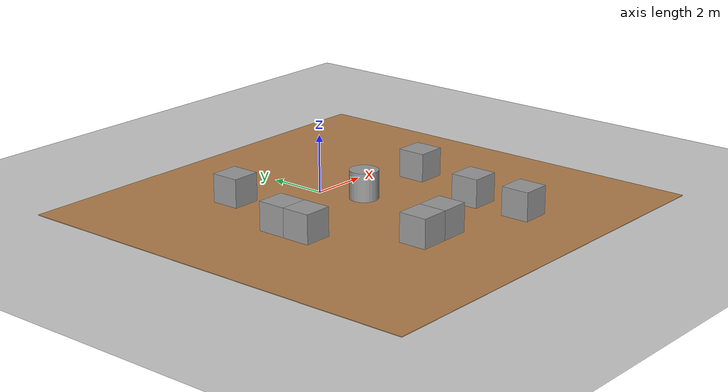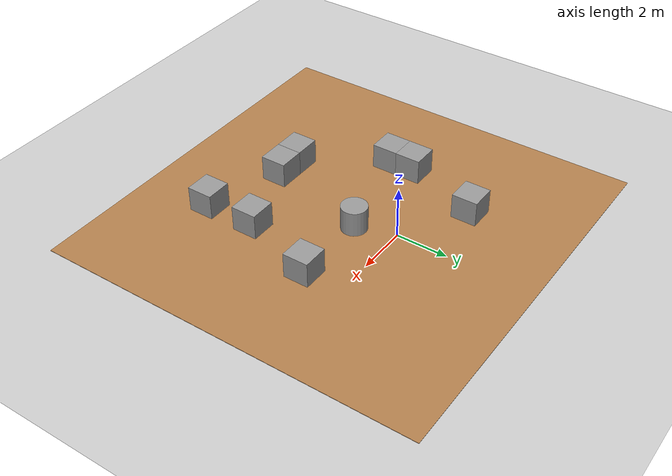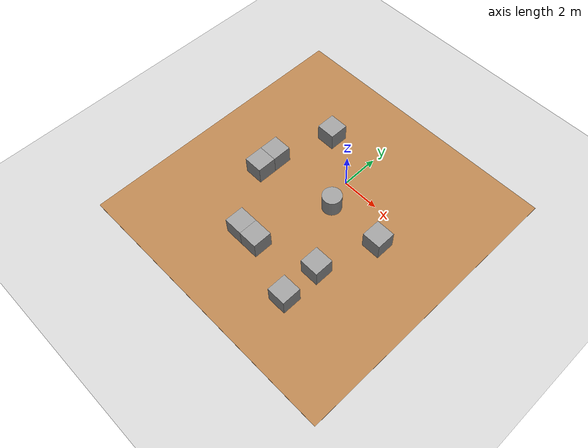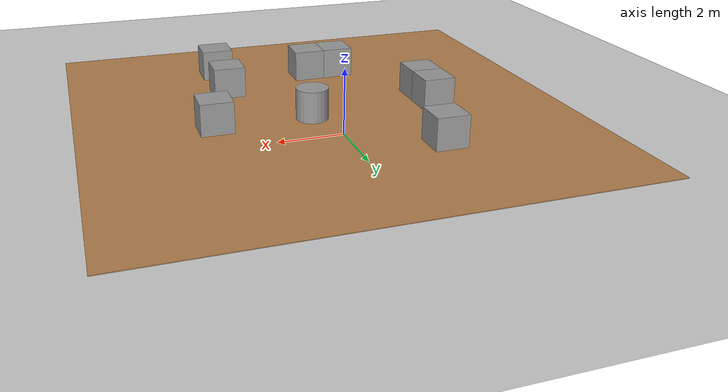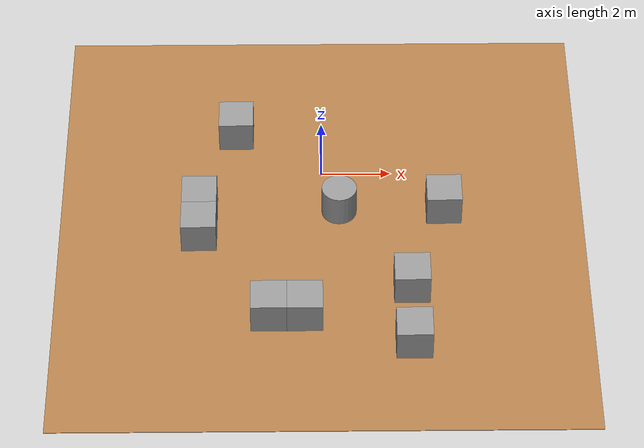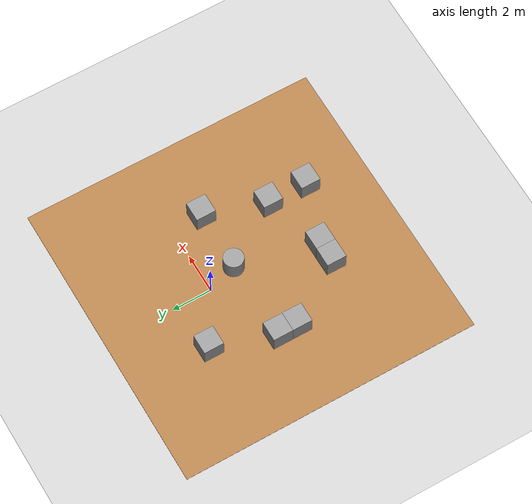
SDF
<sdf version="1.6">
 <world name="default">
  <model name="ground_plane">
   <static>1</static>
   <link name="link">
    <collision name="collision">
     <laser_retro>255</laser_retro>
     <geometry><plane><normal>0 0 1</normal><size>100 100</size></plane></geometry>
     <surface><friction><ode><mu>100</mu><mu2>50</mu2></ode></friction></surface>
    </collision>
    <visual name="visual">
     <cast_shadows>0</cast_shadows>
     <geometry><plane><normal>0 0 1</normal><size>100 100</size></plane></geometry>
     <material>
      <script><uri>file://media/materials/scripts/gazebo.material</uri><name>Gazebo/Grey</name></script>
     </material>
    </visual>
    <velocity_decay><linear>0</linear><angular>0</angular></velocity_decay>
   </link>
  </model>
  <physics name="default_physics" default="0" type="ode">
   <max_step_size>0.001</max_step_size>
   <real_time_factor>1</real_time_factor>
   <real_time_update_rate>1000</real_time_update_rate>
  </physics>
  <scene><ambient>0.4 0.4 0.4 1</ambient><background>0.7 0.7 0.7 1</background><shadows>1</shadows></scene>
  <gravity>0 0 -9.8</gravity>
  <magnetic_field>6e-06 2.3e-05 -4.2e-05</magnetic_field>
  <atmosphere type="adiabatic"/>
  <audio><device>default</device></audio>
  <spherical_coordinates>
   <surface_model>EARTH_WGS84</surface_model>
   <latitude_deg>0</latitude_deg>
   <longitude_deg>0</longitude_deg>
   <elevation>0</elevation>
   <heading_deg>0</heading_deg>
  </spherical_coordinates>
  <model name="unit_cylinder">
   <pose>0.499996 -1.5 0.499993 -4e-06 -3e-06 -0</pose>
   <link name="link">
    <inertial>
     <mass>1</mass>
     <inertia><ixx>0.145833</ixx><ixy>0</ixy><ixz>0</ixz><iyy>0.145833</iyy><iyz>0</iyz><izz>0.125</izz></inertia>
    </inertial>
    <collision name="collision">
     <geometry><cylinder><radius>0.5</radius><length>1</length></cylinder></geometry>
    </collision>
    <visual name="visual">
     <geometry><cylinder><radius>0.5</radius><length>1</length></cylinder></geometry>
     <material>
      <script><name>Gazebo/Grey</name><uri>file://media/materials/scripts/gazebo.material</uri></script>
     </material>
    </visual>
   </link>
  </model>
  <model name="unit_box">
   <pose>-0.500001 -5.5 0.5 0 -0 0</pose>
   <link name="link">
    <inertial>
     <mass>1</mass>
     <inertia>
      <ixx>0.166667</ixx>
      <ixy>0</ixy>
      <ixz>0</ixz>
      <iyy>0.166667</iyy>
      <iyz>0</iyz>
      <izz>0.166667</izz>
     </inertia>
    </inertial>
    <collision name="collision"><geometry><box><size>1 1 1</size></box></geometry></collision>
    <visual name="visual">
     <geometry><box><size>1 1 1</size></box></geometry>
     <material>
      <script><name>Gazebo/Grey</name><uri>file://media/materials/scripts/gazebo.material</uri></script>
     </material>
    </visual>
   </link>
  </model>
  <model name="unit_box_clone">
   <pose>-1.5 -5.5 0.5 0 -0 1e-06</pose>
   <link name="link">
    <inertial>
     <mass>1</mass>
     <inertia>
      <ixx>0.166667</ixx>
      <ixy>0</ixy>
      <ixz>0</ixz>
      <iyy>0.166667</iyy>
      <iyz>0</iyz>
      <izz>0.166667</izz>
     </inertia>
    </inertial>
    <collision name="collision"><geometry><box><size>1 1 1</size></box></geometry></collision>
    <visual name="visual">
     <geometry><box><size>1 1 1</size></box></geometry>
     <material>
      <script><name>Gazebo/Grey</name><uri>file://media/materials/scripts/gazebo.material</uri></script>
     </material>
    </visual>
   </link>
  </model>
  <model name="unit_box_0">
   <pose>2.5 -6.5 0.5 -0 -0 -0</pose>
   <link name="link">
    <inertial>
     <mass>1</mass>
     <inertia>
      <ixx>0.166667</ixx>
      <ixy>0</ixy>
      <ixz>0</ixz>
      <iyy>0.166667</iyy>
      <iyz>0</iyz>
      <izz>0.166667</izz>
     </inertia>
    </inertial>
    <collision name="collision"><geometry><box><size>1 1 1</size></box></geometry></collision>
    <visual name="visual">
     <geometry><box><size>1 1 1</size></box></geometry>
     <material>
      <script><name>Gazebo/Grey</name><uri>file://media/materials/scripts/gazebo.material</uri></script>
     </material>
    </visual>
   </link>
  </model>
  <model name="unit_box_1">
   <pose>-3.5 -2.5 0.5 -0 -0 -2e-06</pose>
   <link name="link">
    <inertial>
     <mass>1</mass>
     <inertia>
      <ixx>0.166667</ixx>
      <ixy>0</ixy>
      <ixz>0</ixz>
      <iyy>0.166667</iyy>
      <iyz>0</iyz>
      <izz>0.166667</izz>
     </inertia>
    </inertial>
    <collision name="collision"><geometry><box><size>1 1 1</size></box></geometry></collision>
    <visual name="visual">
     <geometry><box><size>1 1 1</size></box></geometry>
     <material>
      <script><name>Gazebo/Grey</name><uri>file://media/materials/scripts/gazebo.material</uri></script>
     </material>
    </visual>
   </link>
  </model>
  <model name="unit_box_clone_0">
   <pose>-3.5 -1.49999 0.5 -0 -0 -4e-06</pose>
   <link name="link">
    <inertial>
     <mass>1</mass>
     <inertia>
      <ixx>0.166667</ixx>
      <ixy>0</ixy>
      <ixz>0</ixz>
      <iyy>0.166667</iyy>
      <iyz>0</iyz>
      <izz>0.166667</izz>
     </inertia>
    </inertial>
    <collision name="collision"><geometry><box><size>1 1 1</size></box></geometry></collision>
    <visual name="visual">
     <geometry><box><size>1 1 1</size></box></geometry>
     <material>
      <script><name>Gazebo/Grey</name><uri>file://media/materials/scripts/gazebo.material</uri></script>
     </material>
    </visual>
   </link>
  </model>
  <model name="unit_box_0_clone">
   <pose>3.5 -1.5 0.5 -0 -0 -0</pose>
   <link name="link">
    <inertial>
     <mass>1</mass>
     <inertia>
      <ixx>0.166667</ixx>
      <ixy>0</ixy>
      <ixz>0</ixz>
      <iyy>0.166667</iyy>
      <iyz>0</iyz>
      <izz>0.166667</izz>
     </inertia>
    </inertial>
    <collision name="collision"><geometry><box><size>1 1 1</size></box></geometry></collision>
    <visual name="visual">
     <geometry><box><size>1 1 1</size></box></geometry>
     <material>
      <script><name>Gazebo/Grey</name><uri>file://media/materials/scripts/gazebo.material</uri></script>
     </material>
    </visual>
   </link>
  </model>
  <model name="unit_box_0_clone_0">
   <pose>-2.48759 1.51489 0.5 -0 -0 -0</pose>
   <link name="link">
    <inertial>
     <mass>1</mass>
     <inertia>
      <ixx>0.166667</ixx>
      <ixy>0</ixy>
      <ixz>0</ixz>
      <iyy>0.166667</iyy>
      <iyz>0</iyz>
      <izz>0.166667</izz>
     </inertia>
    </inertial>
    <collision name="collision"><geometry><box><size>1 1 1</size></box></geometry></collision>
    <visual name="visual">
     <geometry><box><size>1 1 1</size></box></geometry>
     <material>
      <script><name>Gazebo/Grey</name><uri>file://media/materials/scripts/gazebo.material</uri></script>
     </material>
    </visual>
   </link>
  </model>
  <model name="unit_box_0_clone_1">
   <pose>2.5 -4.5 0.5 -0 -0 -0</pose>
   <link name="link">
    <inertial>
     <mass>1</mass>
     <inertia>
      <ixx>0.166667</ixx>
      <ixy>0</ixy>
      <ixz>0</ixz>
      <iyy>0.166667</iyy>
      <iyz>0</iyz>
      <izz>0.166667</izz>
     </inertia>
    </inertial>
    <collision name="collision"><geometry><box><size>1 1 1</size></box></geometry></collision>
    <visual name="visual">
     <geometry><box><size>1 1 1</size></box></geometry>
     <material>
      <script><name>Gazebo/Grey</name><uri>file://media/materials/scripts/gazebo.material</uri></script>
     </material>
    </visual>
   </link>
  </model>
  <model name="wooden_floor">
   <link name="base">
    <pose>0 0 0.00523 0 -0 0</pose>
    <inertial>
     <mass>0.2765</mass>
     <inertia>
      <ixx>0.0025148</ixx>
      <ixy>0</ixy>
      <ixz>0</ixz>
      <iyy>0.00024037</iyy>
      <iyz>0</iyz>
      <izz>0.00275013</izz>
     </inertia>
    </inertial>
    <visual name="visual">
     <geometry><box><size>15 15 0.02046</size></box></geometry>
     <material>
      <script><uri>file://media/materials/scripts/gazebo.material</uri><name>Gazebo/Wood</name></script>
      <shader type="vertex"><normal_map>__default__</normal_map></shader>
      <ambient>1 1 1 1</ambient>
      <diffuse>1 1 1 1</diffuse>
      <specular>0.2 0.2 0.2 1</specular>
      <emissive>0 0 0 1</emissive>
     </material>
    </visual>
    <collision name="collision">
     <geometry><box><size>0.1016 0.3302 0.01046</size></box></geometry>
     <surface>
      <friction>
       <ode><mu>1</mu><mu2>1</mu2><fdir1>0 0 0</fdir1><slip1>0</slip1><slip2>0</slip2></ode>
       <torsional>
        <coefficient>1</coefficient>
        <patch_radius>0</patch_radius>
        <surface_radius>0.01</surface_radius>
        <use_patch_radius>0</use_patch_radius>
        <ode><slip>0</slip></ode>
       </torsional>
      </friction>
      <bounce><restitution_coefficient>0</restitution_coefficient><threshold>1e+06</threshold></bounce>
      <contact>
       <collide_without_contact>0</collide_without_contact>
       <collide_without_contact_bitmask>1</collide_without_contact_bitmask>
       <collide_bitmask>1</collide_bitmask>
       <ode>
        <soft_cfm>0</soft_cfm>
        <soft_erp>0.2</soft_erp>
        <kp>100000</kp>
        <kd>100</kd>
        <max_vel>100</max_vel>
        <min_depth>0.001</min_depth>
       </ode>
       <bullet>
        <split_impulse>1</split_impulse>
        <split_impulse_penetration_threshold>-0.01</split_impulse_penetration_threshold>
        <soft_cfm>0</soft_cfm>
        <soft_erp>0.2</soft_erp>
        <kp>100000</kp>
        <kd>100</kd>
       </bullet>
      </contact>
     </surface>
    </collision>
   </link>
   <static>0</static>
   <pose>0 -2 -0.001007 0 -0 0</pose>
  </model>
  <light name="user_directional_light_0" type="directional">
   <pose>-0.505351 -5.5014 1 0 -0 0</pose>
   <diffuse>0.5 0.5 0.5 1</diffuse>
   <specular>0.1 0.1 0.1 1</specular>
   <direction>0.1 0.1 -0.9</direction>
   <attenuation>
    <range>20</range>
    <constant>0.5</constant>
    <linear>0.01</linear>
    <quadratic>0.001</quadratic>
   </attenuation>
  </light>
 </world>
</sdf>
